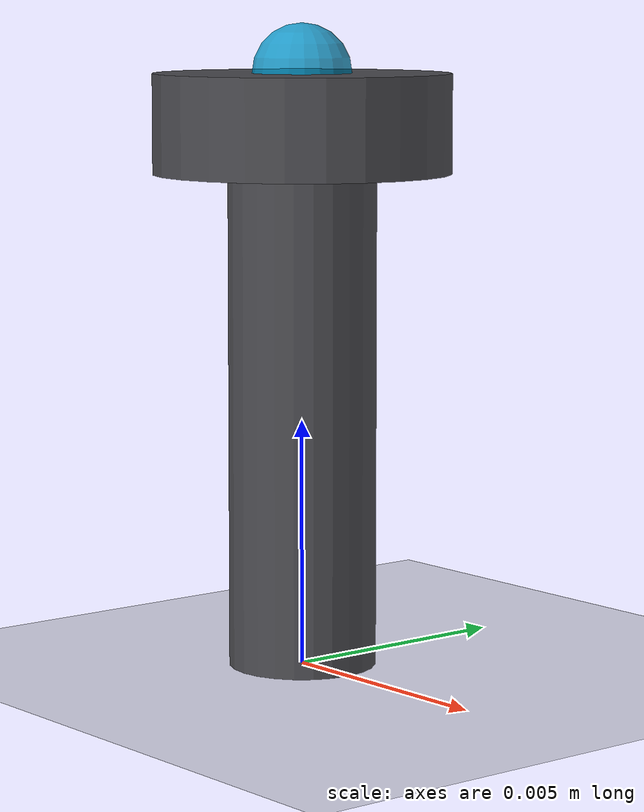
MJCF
<mujoco model="keyboard_screw">

  <compiler angle="radian" autolimits="true"/>

  <option gravity="0 0 -9.81" timestep="0.002"/>

  <asset>
    <material name="steel_dark"
              rgba="0.30 0.30 0.32 1"
              specular="0.9"
              shininess="0.8"
              reflectance="0.4"/>
  </asset>

  <worldbody>

    <geom name="ground" type="plane" size="1 1 0.1"
          pos="0 0 0"
          friction="0.8 0.005 0.0001"
          rgba="0.4 0.4 0.4 1"/>

    <body name="screw_m3" pos="0 0 0">

      <inertial pos="0 0 0.006"
                mass="0.0005"
                diaginertia="1.0e-9 1.0e-9 5.0e-10"/>

      <!-- freejoint added in integration scene -->

      <!-- ── SHAFT ──────────────────────────────────────────────────────
           Runs from z=0 (tip) to z=0.010 (base)
           Center = 0.005, half-height = 0.005
      -->
      <geom name="screw_shaft"
            type="cylinder"
            size="0.0015 0.005"
            pos="0 0 0.005"
            material="steel_dark"
            density="7800"
            friction="0.3 0.005 0.0001"
            condim="4"
            priority="1"/>

      <!-- ── HEAD ───────────────────────────────────────────────────────
           Sits on top of shaft
           Bottom = 0.010, top = 0.012
           Center = 0.011, half-height = 0.001
      -->
      <geom name="screw_head"
            type="cylinder"
            size="0.003 0.001"
            pos="0 0 0.011"
            material="steel_dark"
            density="7800"
            friction="0.3 0.005 0.0001"
            condim="4"
            priority="1"/>

      <!-- ── SITES ─────────────────────────────────────────────────── -->

      <!-- Shaft tip — insertion point -->
      <site name="shaft_tip"
            type="sphere" size="0.001"
            pos="0 0 0"
            rgba="1 0.2 0.2 0.8"/>

      <!-- Head top — screwdriver bit engagement -->
      <site name="driver_engage"
            type="sphere" size="0.001"
            pos="0 0 0.012"
            rgba="0 0.6 0.8 0.8"/>

      <!-- Head center — magnetic pickup -->
      <site name="magnetic_grasp"
            type="sphere" size="0.001"
            pos="0 0 0.011"
            rgba="1 1 0 0.6"/>

    </body>

  </worldbody>

</mujoco>
